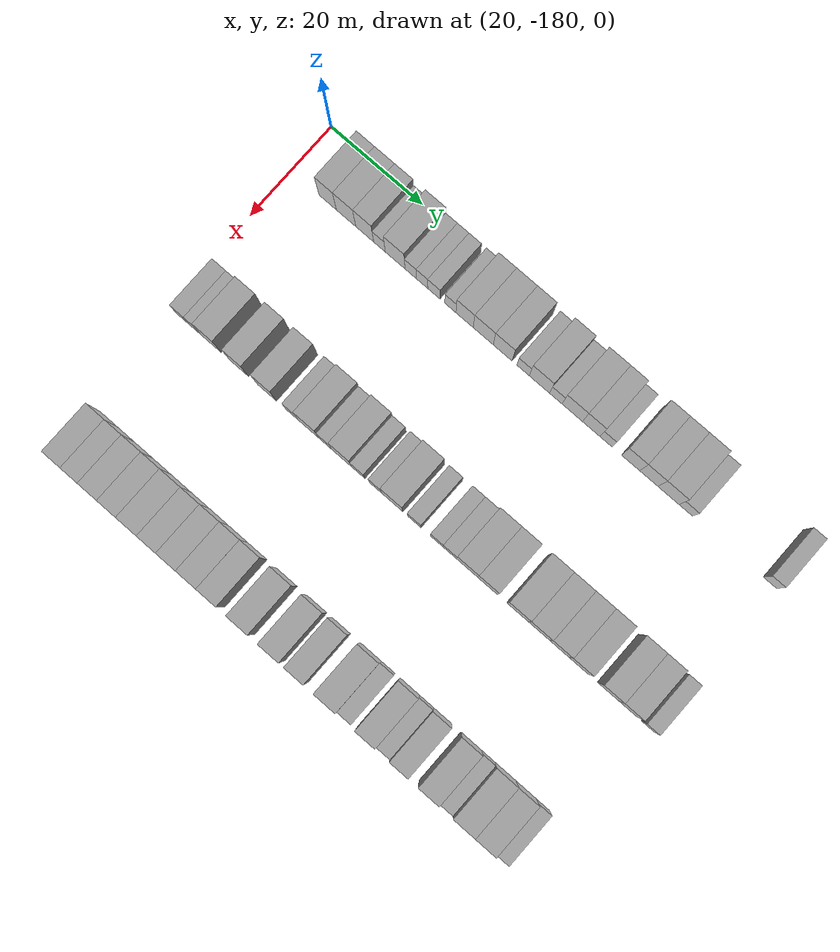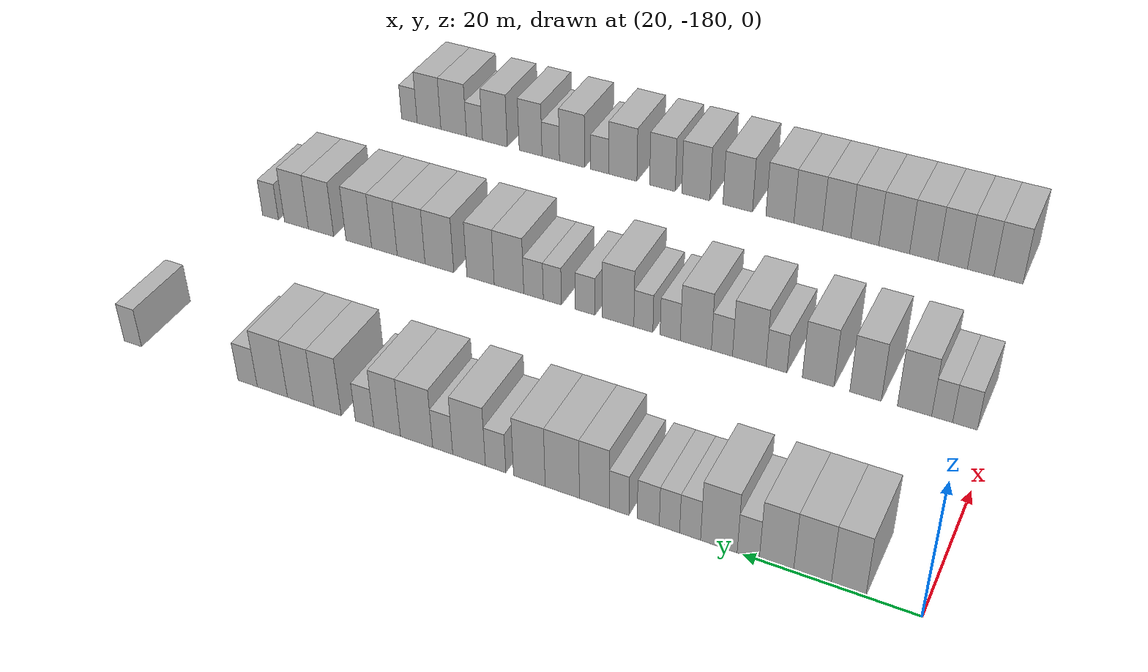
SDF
<sdf version="1.6">
 <world name="default">
  <model name="building_24">
   <static>1</static>
   <pose>25.0000 -171.9124 0 0.000000 0.000000 0.000000</pose>
   <link name="link">
    <pose>0 0 4.50 0 0 0</pose>
    <collision name="collision"><geometry><box><size>10.0000 3.8219 9.0000</size></box></geometry></collision>
    <visual name="visual">
     <cast_shadows>0</cast_shadows>
     <geometry><box><size>10.0000 3.8219 9.0000</size></box></geometry>
     <material>
      <script>
       <uri>model://HANNAS_wall/materials/scripts</uri>
       <uri>model://HANNAS_wall/materials/textures</uri>
       <name>vrc/HANNAS_wall</name>
      </script>
     </material>
    </visual>
   </link>
  </model>
  <model name="building_25">
   <static>1</static>
   <pose>25.0000 -167.8918 0 0.000000 0.000000 0.000000</pose>
   <link name="link">
    <pose>0 0 4.50 0 0 0</pose>
    <collision name="collision"><geometry><box><size>10.0000 4.2192 9.0000</size></box></geometry></collision>
    <visual name="visual">
     <cast_shadows>0</cast_shadows>
     <geometry><box><size>10.0000 4.2192 9.0000</size></box></geometry>
     <material>
      <script>
       <uri>model://HANNAS_wall/materials/scripts</uri>
       <uri>model://HANNAS_wall/materials/textures</uri>
       <name>vrc/HANNAS_wall</name>
      </script>
     </material>
    </visual>
   </link>
  </model>
  <model name="building_26">
   <static>1</static>
   <pose>25.0000 -163.8334 0 0.000000 0.000000 0.000000</pose>
   <link name="link">
    <pose>0 0 4.50 0 0 0</pose>
    <collision name="collision"><geometry><box><size>10.0000 3.8976 9.0000</size></box></geometry></collision>
    <visual name="visual">
     <cast_shadows>0</cast_shadows>
     <geometry><box><size>10.0000 3.8976 9.0000</size></box></geometry>
     <material>
      <script>
       <uri>model://HANNAS_wall/materials/scripts</uri>
       <uri>model://HANNAS_wall/materials/textures</uri>
       <name>vrc/HANNAS_wall</name>
      </script>
     </material>
    </visual>
   </link>
  </model>
  <model name="building_27">
   <static>1</static>
   <pose>25.0000 -160.6127 0 0.000000 0.000000 0.000000</pose>
   <link name="link">
    <pose>0 0 3.00 0 0 0</pose>
    <collision name="collision"><geometry><box><size>10.0000 2.5439 6.0000</size></box></geometry></collision>
    <visual name="visual">
     <cast_shadows>0</cast_shadows>
     <geometry><box><size>10.0000 2.5439 6.0000</size></box></geometry>
     <material>
      <script>
       <uri>model://HANNAS_wall/materials/scripts</uri>
       <uri>model://HANNAS_wall/materials/textures</uri>
       <name>vrc/HANNAS_wall</name>
      </script>
     </material>
    </visual>
   </link>
  </model>
  <model name="building_28">
   <static>1</static>
   <pose>25.0000 -157.1994 0 0.000000 0.000000 0.000000</pose>
   <link name="link">
    <pose>0 0 4.50 0 0 0</pose>
    <collision name="collision"><geometry><box><size>10.0000 4.2827 9.0000</size></box></geometry></collision>
    <visual name="visual">
     <cast_shadows>0</cast_shadows>
     <geometry><box><size>10.0000 4.2827 9.0000</size></box></geometry>
     <material>
      <script>
       <uri>model://HANNAS_wall/materials/scripts</uri>
       <uri>model://HANNAS_wall/materials/textures</uri>
       <name>vrc/HANNAS_wall</name>
      </script>
     </material>
    </visual>
   </link>
  </model>
  <model name="building_29">
   <static>1</static>
   <pose>25.0000 -153.8131 0 0.000000 0.000000 0.000000</pose>
   <link name="link">
    <pose>0 0 3.00 0 0 0</pose>
    <collision name="collision"><geometry><box><size>10.0000 2.4900 6.0000</size></box></geometry></collision>
    <visual name="visual">
     <cast_shadows>0</cast_shadows>
     <geometry><box><size>10.0000 2.4900 6.0000</size></box></geometry>
     <material>
      <script>
       <uri>model://HANNAS_wall/materials/scripts</uri>
       <uri>model://HANNAS_wall/materials/textures</uri>
       <name>vrc/HANNAS_wall</name>
      </script>
     </material>
    </visual>
   </link>
  </model>
  <model name="building_30">
   <static>1</static>
   <pose>25.0000 -151.3480 0 0.000000 0.000000 0.000000</pose>
   <link name="link">
    <pose>0 0 3.00 0 0 0</pose>
    <collision name="collision"><geometry><box><size>10.0000 2.4401 6.0000</size></box></geometry></collision>
    <visual name="visual">
     <cast_shadows>0</cast_shadows>
     <geometry><box><size>10.0000 2.4401 6.0000</size></box></geometry>
     <material>
      <script>
       <uri>model://HANNAS_wall/materials/scripts</uri>
       <uri>model://HANNAS_wall/materials/textures</uri>
       <name>vrc/HANNAS_wall</name>
      </script>
     </material>
    </visual>
   </link>
  </model>
  <model name="building_31">
   <static>1</static>
   <pose>25.0000 -148.7919 0 0.000000 0.000000 0.000000</pose>
   <link name="link">
    <pose>0 0 3.00 0 0 0</pose>
    <collision name="collision"><geometry><box><size>10.0000 2.6721 6.0000</size></box></geometry></collision>
    <visual name="visual">
     <cast_shadows>0</cast_shadows>
     <geometry><box><size>10.0000 2.6721 6.0000</size></box></geometry>
     <material>
      <script>
       <uri>model://HANNAS_wall/materials/scripts</uri>
       <uri>model://HANNAS_wall/materials/textures</uri>
       <name>vrc/HANNAS_wall</name>
      </script>
     </material>
    </visual>
   </link>
  </model>
  <model name="building_32">
   <static>1</static>
   <pose>25.0000 -145.2476 0 0.000000 0.000000 0.000000</pose>
   <link name="link">
    <pose>0 0 3.00 0 0 0</pose>
    <collision name="collision"><geometry><box><size>10.0000 2.4164 6.0000</size></box></geometry></collision>
    <visual name="visual">
     <cast_shadows>0</cast_shadows>
     <geometry><box><size>10.0000 2.4164 6.0000</size></box></geometry>
     <material>
      <script>
       <uri>model://HANNAS_wall/materials/scripts</uri>
       <uri>model://HANNAS_wall/materials/textures</uri>
       <name>vrc/HANNAS_wall</name>
      </script>
     </material>
    </visual>
   </link>
  </model>
  <model name="building_33">
   <static>1</static>
   <pose>25.0000 -142.1859 0 0.000000 0.000000 0.000000</pose>
   <link name="link">
    <pose>0 0 4.50 0 0 0</pose>
    <collision name="collision"><geometry><box><size>10.0000 3.7071 9.0000</size></box></geometry></collision>
    <visual name="visual">
     <cast_shadows>0</cast_shadows>
     <geometry><box><size>10.0000 3.7071 9.0000</size></box></geometry>
     <material>
      <script>
       <uri>model://HANNAS_wall/materials/scripts</uri>
       <uri>model://HANNAS_wall/materials/textures</uri>
       <name>vrc/HANNAS_wall</name>
      </script>
     </material>
    </visual>
   </link>
  </model>
  <model name="building_34">
   <static>1</static>
   <pose>25.0000 -138.1771 0 0.000000 0.000000 0.000000</pose>
   <link name="link">
    <pose>0 0 4.50 0 0 0</pose>
    <collision name="collision"><geometry><box><size>10.0000 4.3105 9.0000</size></box></geometry></collision>
    <visual name="visual">
     <cast_shadows>0</cast_shadows>
     <geometry><box><size>10.0000 4.3105 9.0000</size></box></geometry>
     <material>
      <script>
       <uri>model://HANNAS_wall/materials/scripts</uri>
       <uri>model://HANNAS_wall/materials/textures</uri>
       <name>vrc/HANNAS_wall</name>
      </script>
     </material>
    </visual>
   </link>
  </model>
  <model name="building_35">
   <static>1</static>
   <pose>25.0000 -133.9963 0 0.000000 0.000000 0.000000</pose>
   <link name="link">
    <pose>0 0 4.50 0 0 0</pose>
    <collision name="collision"><geometry><box><size>10.0000 4.0511 9.0000</size></box></geometry></collision>
    <visual name="visual">
     <cast_shadows>0</cast_shadows>
     <geometry><box><size>10.0000 4.0511 9.0000</size></box></geometry>
     <material>
      <script>
       <uri>model://HANNAS_wall/materials/scripts</uri>
       <uri>model://HANNAS_wall/materials/textures</uri>
       <name>vrc/HANNAS_wall</name>
      </script>
     </material>
    </visual>
   </link>
  </model>
  <model name="building_36">
   <static>1</static>
   <pose>25.0000 -129.6405 0 0.000000 0.000000 0.000000</pose>
   <link name="link">
    <pose>0 0 3.00 0 0 0</pose>
    <collision name="collision"><geometry><box><size>10.0000 2.6605 6.0000</size></box></geometry></collision>
    <visual name="visual">
     <cast_shadows>0</cast_shadows>
     <geometry><box><size>10.0000 2.6605 6.0000</size></box></geometry>
     <material>
      <script>
       <uri>model://HANNAS_wall/materials/scripts</uri>
       <uri>model://HANNAS_wall/materials/textures</uri>
       <name>vrc/HANNAS_wall</name>
      </script>
     </material>
    </visual>
   </link>
  </model>
  <model name="building_37">
   <static>1</static>
   <pose>25.0000 -126.1545 0 0.000000 0.000000 0.000000</pose>
   <link name="link">
    <pose>0 0 4.50 0 0 0</pose>
    <collision name="collision"><geometry><box><size>10.0000 4.3115 9.0000</size></box></geometry></collision>
    <visual name="visual">
     <cast_shadows>0</cast_shadows>
     <geometry><box><size>10.0000 4.3115 9.0000</size></box></geometry>
     <material>
      <script>
       <uri>model://HANNAS_wall/materials/scripts</uri>
       <uri>model://HANNAS_wall/materials/textures</uri>
       <name>vrc/HANNAS_wall</name>
      </script>
     </material>
    </visual>
   </link>
  </model>
  <model name="building_38">
   <static>1</static>
   <pose>25.0000 -122.6563 0 0.000000 0.000000 0.000000</pose>
   <link name="link">
    <pose>0 0 3.00 0 0 0</pose>
    <collision name="collision"><geometry><box><size>10.0000 2.6848 6.0000</size></box></geometry></collision>
    <visual name="visual">
     <cast_shadows>0</cast_shadows>
     <geometry><box><size>10.0000 2.6848 6.0000</size></box></geometry>
     <material>
      <script>
       <uri>model://HANNAS_wall/materials/scripts</uri>
       <uri>model://HANNAS_wall/materials/textures</uri>
       <name>vrc/HANNAS_wall</name>
      </script>
     </material>
    </visual>
   </link>
  </model>
  <model name="building_39">
   <static>1</static>
   <pose>25.0000 -119.1325 0 0.000000 0.000000 0.000000</pose>
   <link name="link">
    <pose>0 0 4.50 0 0 0</pose>
    <collision name="collision"><geometry><box><size>10.0000 4.3629 9.0000</size></box></geometry></collision>
    <visual name="visual">
     <cast_shadows>0</cast_shadows>
     <geometry><box><size>10.0000 4.3629 9.0000</size></box></geometry>
     <material>
      <script>
       <uri>model://HANNAS_wall/materials/scripts</uri>
       <uri>model://HANNAS_wall/materials/textures</uri>
       <name>vrc/HANNAS_wall</name>
      </script>
     </material>
    </visual>
   </link>
  </model>
  <model name="building_40">
   <static>1</static>
   <pose>25.0000 -115.1239 0 0.000000 0.000000 0.000000</pose>
   <link name="link">
    <pose>0 0 4.50 0 0 0</pose>
    <collision name="collision"><geometry><box><size>10.0000 3.6542 9.0000</size></box></geometry></collision>
    <visual name="visual">
     <cast_shadows>0</cast_shadows>
     <geometry><box><size>10.0000 3.6542 9.0000</size></box></geometry>
     <material>
      <script>
       <uri>model://HANNAS_wall/materials/scripts</uri>
       <uri>model://HANNAS_wall/materials/textures</uri>
       <name>vrc/HANNAS_wall</name>
      </script>
     </material>
    </visual>
   </link>
  </model>
  <model name="building_41">
   <static>1</static>
   <pose>25.0000 -112.0089 0 0.000000 0.000000 0.000000</pose>
   <link name="link">
    <pose>0 0 3.00 0 0 0</pose>
    <collision name="collision"><geometry><box><size>10.0000 2.5757 6.0000</size></box></geometry></collision>
    <visual name="visual">
     <cast_shadows>0</cast_shadows>
     <geometry><box><size>10.0000 2.5757 6.0000</size></box></geometry>
     <material>
      <script>
       <uri>model://HANNAS_wall/materials/scripts</uri>
       <uri>model://HANNAS_wall/materials/textures</uri>
       <name>vrc/HANNAS_wall</name>
      </script>
     </material>
    </visual>
   </link>
  </model>
  <model name="building_42">
   <static>1</static>
   <pose>25.0000 -106.8055 0 0.000000 0.000000 0.000000</pose>
   <link name="link">
    <pose>0 0 4.50 0 0 0</pose>
    <collision name="collision"><geometry><box><size>10.0000 3.8310 9.0000</size></box></geometry></collision>
    <visual name="visual">
     <cast_shadows>0</cast_shadows>
     <geometry><box><size>10.0000 3.8310 9.0000</size></box></geometry>
     <material>
      <script>
       <uri>model://HANNAS_wall/materials/scripts</uri>
       <uri>model://HANNAS_wall/materials/textures</uri>
       <name>vrc/HANNAS_wall</name>
      </script>
     </material>
    </visual>
   </link>
  </model>
  <model name="building_43">
   <static>1</static>
   <pose>25.0000 -102.9710 0 0.000000 0.000000 0.000000</pose>
   <link name="link">
    <pose>0 0 4.50 0 0 0</pose>
    <collision name="collision"><geometry><box><size>10.0000 3.8380 9.0000</size></box></geometry></collision>
    <visual name="visual">
     <cast_shadows>0</cast_shadows>
     <geometry><box><size>10.0000 3.8380 9.0000</size></box></geometry>
     <material>
      <script>
       <uri>model://HANNAS_wall/materials/scripts</uri>
       <uri>model://HANNAS_wall/materials/textures</uri>
       <name>vrc/HANNAS_wall</name>
      </script>
     </material>
    </visual>
   </link>
  </model>
  <model name="building_44">
   <static>1</static>
   <pose>25.0000 -98.8531 0 0.000000 0.000000 0.000000</pose>
   <link name="link">
    <pose>0 0 4.50 0 0 0</pose>
    <collision name="collision"><geometry><box><size>10.0000 4.3977 9.0000</size></box></geometry></collision>
    <visual name="visual">
     <cast_shadows>0</cast_shadows>
     <geometry><box><size>10.0000 4.3977 9.0000</size></box></geometry>
     <material>
      <script>
       <uri>model://HANNAS_wall/materials/scripts</uri>
       <uri>model://HANNAS_wall/materials/textures</uri>
       <name>vrc/HANNAS_wall</name>
      </script>
     </material>
    </visual>
   </link>
  </model>
  <model name="building_45">
   <static>1</static>
   <pose>25.0000 -95.2308 0 0.000000 0.000000 0.000000</pose>
   <link name="link">
    <pose>0 0 3.00 0 0 0</pose>
    <collision name="collision"><geometry><box><size>10.0000 2.8469 6.0000</size></box></geometry></collision>
    <visual name="visual">
     <cast_shadows>0</cast_shadows>
     <geometry><box><size>10.0000 2.8469 6.0000</size></box></geometry>
     <material>
      <script>
       <uri>model://HANNAS_wall/materials/scripts</uri>
       <uri>model://HANNAS_wall/materials/textures</uri>
       <name>vrc/HANNAS_wall</name>
      </script>
     </material>
    </visual>
   </link>
  </model>
  <model name="building_46">
   <static>1</static>
   <pose>25.0000 -77.7292 0 0.000000 0.000000 0.000000</pose>
   <link name="link">
    <pose>0 0 3.00 0 0 0</pose>
    <collision name="collision"><geometry><box><size>10.0000 2.7188 6.0000</size></box></geometry></collision>
    <visual name="visual">
     <cast_shadows>0</cast_shadows>
     <geometry><box><size>10.0000 2.7188 6.0000</size></box></geometry>
     <material>
      <script>
       <uri>model://HANNAS_wall/materials/scripts</uri>
       <uri>model://HANNAS_wall/materials/textures</uri>
       <name>vrc/HANNAS_wall</name>
      </script>
     </material>
    </visual>
   </link>
  </model>
  <model name="building_161">
   <static>1</static>
   <pose>55.0000 -176.5778 0 0.000000 0.000000 0.000000</pose>
   <link name="link">
    <pose>0 0 3.00 0 0 0</pose>
    <collision name="collision"><geometry><box><size>10.0000 2.9802 6.0000</size></box></geometry></collision>
    <visual name="visual">
     <cast_shadows>0</cast_shadows>
     <geometry><box><size>10.0000 2.9802 6.0000</size></box></geometry>
     <material>
      <script>
       <uri>model://HANNAS_wall/materials/scripts</uri>
       <uri>model://HANNAS_wall/materials/textures</uri>
       <name>vrc/HANNAS_wall</name>
      </script>
     </material>
    </visual>
   </link>
  </model>
  <model name="building_162">
   <static>1</static>
   <pose>55.0000 -173.8119 0 0.000000 0.000000 0.000000</pose>
   <link name="link">
    <pose>0 0 3.00 0 0 0</pose>
    <collision name="collision"><geometry><box><size>10.0000 2.5515 6.0000</size></box></geometry></collision>
    <visual name="visual">
     <cast_shadows>0</cast_shadows>
     <geometry><box><size>10.0000 2.5515 6.0000</size></box></geometry>
     <material>
      <script>
       <uri>model://HANNAS_wall/materials/scripts</uri>
       <uri>model://HANNAS_wall/materials/textures</uri>
       <name>vrc/HANNAS_wall</name>
      </script>
     </material>
    </visual>
   </link>
  </model>
  <model name="building_163">
   <static>1</static>
   <pose>55.0000 -170.4218 0 0.000000 0.000000 0.000000</pose>
   <link name="link">
    <pose>0 0 4.50 0 0 0</pose>
    <collision name="collision"><geometry><box><size>10.0000 4.2287 9.0000</size></box></geometry></collision>
    <visual name="visual">
     <cast_shadows>0</cast_shadows>
     <geometry><box><size>10.0000 4.2287 9.0000</size></box></geometry>
     <material>
      <script>
       <uri>model://HANNAS_wall/materials/scripts</uri>
       <uri>model://HANNAS_wall/materials/textures</uri>
       <name>vrc/HANNAS_wall</name>
      </script>
     </material>
    </visual>
   </link>
  </model>
  <model name="building_164">
   <static>1</static>
   <pose>55.0000 -164.3189 0 0.000000 0.000000 0.000000</pose>
   <link name="link">
    <pose>0 0 4.50 0 0 0</pose>
    <collision name="collision"><geometry><box><size>10.0000 3.9770 9.0000</size></box></geometry></collision>
    <visual name="visual">
     <cast_shadows>0</cast_shadows>
     <geometry><box><size>10.0000 3.9770 9.0000</size></box></geometry>
     <material>
      <script>
       <uri>model://HANNAS_wall/materials/scripts</uri>
       <uri>model://HANNAS_wall/materials/textures</uri>
       <name>vrc/HANNAS_wall</name>
      </script>
     </material>
    </visual>
   </link>
  </model>
  <model name="building_165">
   <static>1</static>
   <pose>55.0000 -158.2863 0 0.000000 0.000000 0.000000</pose>
   <link name="link">
    <pose>0 0 4.50 0 0 0</pose>
    <collision name="collision"><geometry><box><size>10.0000 4.0882 9.0000</size></box></geometry></collision>
    <visual name="visual">
     <cast_shadows>0</cast_shadows>
     <geometry><box><size>10.0000 4.0882 9.0000</size></box></geometry>
     <material>
      <script>
       <uri>model://HANNAS_wall/materials/scripts</uri>
       <uri>model://HANNAS_wall/materials/textures</uri>
       <name>vrc/HANNAS_wall</name>
      </script>
     </material>
    </visual>
   </link>
  </model>
  <model name="building_166">
   <static>1</static>
   <pose>55.0000 -152.8646 0 0.000000 0.000000 0.000000</pose>
   <link name="link">
    <pose>0 0 3.00 0 0 0</pose>
    <collision name="collision"><geometry><box><size>10.0000 2.7552 6.0000</size></box></geometry></collision>
    <visual name="visual">
     <cast_shadows>0</cast_shadows>
     <geometry><box><size>10.0000 2.7552 6.0000</size></box></geometry>
     <material>
      <script>
       <uri>model://HANNAS_wall/materials/scripts</uri>
       <uri>model://HANNAS_wall/materials/textures</uri>
       <name>vrc/HANNAS_wall</name>
      </script>
     </material>
    </visual>
   </link>
  </model>
  <model name="building_167">
   <static>1</static>
   <pose>55.0000 -149.2653 0 0.000000 0.000000 0.000000</pose>
   <link name="link">
    <pose>0 0 4.50 0 0 0</pose>
    <collision name="collision"><geometry><box><size>10.0000 4.4434 9.0000</size></box></geometry></collision>
    <visual name="visual">
     <cast_shadows>0</cast_shadows>
     <geometry><box><size>10.0000 4.4434 9.0000</size></box></geometry>
     <material>
      <script>
       <uri>model://HANNAS_wall/materials/scripts</uri>
       <uri>model://HANNAS_wall/materials/textures</uri>
       <name>vrc/HANNAS_wall</name>
      </script>
     </material>
    </visual>
   </link>
  </model>
  <model name="building_168">
   <static>1</static>
   <pose>55.0000 -145.6277 0 0.000000 0.000000 0.000000</pose>
   <link name="link">
    <pose>0 0 3.00 0 0 0</pose>
    <collision name="collision"><geometry><box><size>10.0000 2.8317 6.0000</size></box></geometry></collision>
    <visual name="visual">
     <cast_shadows>0</cast_shadows>
     <geometry><box><size>10.0000 2.8317 6.0000</size></box></geometry>
     <material>
      <script>
       <uri>model://HANNAS_wall/materials/scripts</uri>
       <uri>model://HANNAS_wall/materials/textures</uri>
       <name>vrc/HANNAS_wall</name>
      </script>
     </material>
    </visual>
   </link>
  </model>
  <model name="building_169">
   <static>1</static>
   <pose>55.0000 -142.0864 0 0.000000 0.000000 0.000000</pose>
   <link name="link">
    <pose>0 0 4.50 0 0 0</pose>
    <collision name="collision"><geometry><box><size>10.0000 4.2509 9.0000</size></box></geometry></collision>
    <visual name="visual">
     <cast_shadows>0</cast_shadows>
     <geometry><box><size>10.0000 4.2509 9.0000</size></box></geometry>
     <material>
      <script>
       <uri>model://HANNAS_wall/materials/scripts</uri>
       <uri>model://HANNAS_wall/materials/textures</uri>
       <name>vrc/HANNAS_wall</name>
      </script>
     </material>
    </visual>
   </link>
  </model>
  <model name="building_170">
   <static>1</static>
   <pose>55.0000 -138.5723 0 0.000000 0.000000 0.000000</pose>
   <link name="link">
    <pose>0 0 3.00 0 0 0</pose>
    <collision name="collision"><geometry><box><size>10.0000 2.7774 6.0000</size></box></geometry></collision>
    <visual name="visual">
     <cast_shadows>0</cast_shadows>
     <geometry><box><size>10.0000 2.7774 6.0000</size></box></geometry>
     <material>
      <script>
       <uri>model://HANNAS_wall/materials/scripts</uri>
       <uri>model://HANNAS_wall/materials/textures</uri>
       <name>vrc/HANNAS_wall</name>
      </script>
     </material>
    </visual>
   </link>
  </model>
  <model name="building_171">
   <static>1</static>
   <pose>55.0000 -134.8579 0 0.000000 0.000000 0.000000</pose>
   <link name="link">
    <pose>0 0 3.00 0 0 0</pose>
    <collision name="collision"><geometry><box><size>10.0000 2.6514 6.0000</size></box></geometry></collision>
    <visual name="visual">
     <cast_shadows>0</cast_shadows>
     <geometry><box><size>10.0000 2.6514 6.0000</size></box></geometry>
     <material>
      <script>
       <uri>model://HANNAS_wall/materials/scripts</uri>
       <uri>model://HANNAS_wall/materials/textures</uri>
       <name>vrc/HANNAS_wall</name>
      </script>
     </material>
    </visual>
   </link>
  </model>
  <model name="building_172">
   <static>1</static>
   <pose>55.0000 -131.2928 0 0.000000 0.000000 0.000000</pose>
   <link name="link">
    <pose>0 0 4.50 0 0 0</pose>
    <collision name="collision"><geometry><box><size>10.0000 4.4788 9.0000</size></box></geometry></collision>
    <visual name="visual">
     <cast_shadows>0</cast_shadows>
     <geometry><box><size>10.0000 4.4788 9.0000</size></box></geometry>
     <material>
      <script>
       <uri>model://HANNAS_wall/materials/scripts</uri>
       <uri>model://HANNAS_wall/materials/textures</uri>
       <name>vrc/HANNAS_wall</name>
      </script>
     </material>
    </visual>
   </link>
  </model>
  <model name="building_173">
   <static>1</static>
   <pose>55.0000 -126.6267 0 0.000000 0.000000 0.000000</pose>
   <link name="link">
    <pose>0 0 3.00 0 0 0</pose>
    <collision name="collision"><geometry><box><size>10.0000 2.8535 6.0000</size></box></geometry></collision>
    <visual name="visual">
     <cast_shadows>0</cast_shadows>
     <geometry><box><size>10.0000 2.8535 6.0000</size></box></geometry>
     <material>
      <script>
       <uri>model://HANNAS_wall/materials/scripts</uri>
       <uri>model://HANNAS_wall/materials/textures</uri>
       <name>vrc/HANNAS_wall</name>
      </script>
     </material>
    </visual>
   </link>
  </model>
  <model name="building_174">
   <static>1</static>
   <pose>55.0000 -121.8804 0 0.000000 0.000000 0.000000</pose>
   <link name="link">
    <pose>0 0 3.00 0 0 0</pose>
    <collision name="collision"><geometry><box><size>10.0000 2.6390 6.0000</size></box></geometry></collision>
    <visual name="visual">
     <cast_shadows>0</cast_shadows>
     <geometry><box><size>10.0000 2.6390 6.0000</size></box></geometry>
     <material>
      <script>
       <uri>model://HANNAS_wall/materials/scripts</uri>
       <uri>model://HANNAS_wall/materials/textures</uri>
       <name>vrc/HANNAS_wall</name>
      </script>
     </material>
    </visual>
   </link>
  </model>
  <model name="building_175">
   <static>1</static>
   <pose>55.0000 -119.1219 0 0.000000 0.000000 0.000000</pose>
   <link name="link">
    <pose>0 0 3.00 0 0 0</pose>
    <collision name="collision"><geometry><box><size>10.0000 2.8780 6.0000</size></box></geometry></collision>
    <visual name="visual">
     <cast_shadows>0</cast_shadows>
     <geometry><box><size>10.0000 2.8780 6.0000</size></box></geometry>
     <material>
      <script>
       <uri>model://HANNAS_wall/materials/scripts</uri>
       <uri>model://HANNAS_wall/materials/textures</uri>
       <name>vrc/HANNAS_wall</name>
      </script>
     </material>
    </visual>
   </link>
  </model>
  <model name="building_176">
   <static>1</static>
   <pose>55.0000 -115.4802 0 0.000000 0.000000 0.000000</pose>
   <link name="link">
    <pose>0 0 4.50 0 0 0</pose>
    <collision name="collision"><geometry><box><size>10.0000 4.4054 9.0000</size></box></geometry></collision>
    <visual name="visual">
     <cast_shadows>0</cast_shadows>
     <geometry><box><size>10.0000 4.4054 9.0000</size></box></geometry>
     <material>
      <script>
       <uri>model://HANNAS_wall/materials/scripts</uri>
       <uri>model://HANNAS_wall/materials/textures</uri>
       <name>vrc/HANNAS_wall</name>
      </script>
     </material>
    </visual>
   </link>
  </model>
  <model name="building_177">
   <static>1</static>
   <pose>55.0000 -111.2145 0 0.000000 0.000000 0.000000</pose>
   <link name="link">
    <pose>0 0 4.50 0 0 0</pose>
    <collision name="collision"><geometry><box><size>10.0000 4.1259 9.0000</size></box></geometry></collision>
    <visual name="visual">
     <cast_shadows>0</cast_shadows>
     <geometry><box><size>10.0000 4.1259 9.0000</size></box></geometry>
     <material>
      <script>
       <uri>model://HANNAS_wall/materials/scripts</uri>
       <uri>model://HANNAS_wall/materials/textures</uri>
       <name>vrc/HANNAS_wall</name>
      </script>
     </material>
    </visual>
   </link>
  </model>
  <model name="building_178">
   <static>1</static>
   <pose>55.0000 -104.9356 0 0.000000 0.000000 0.000000</pose>
   <link name="link">
    <pose>0 0 4.50 0 0 0</pose>
    <collision name="collision"><geometry><box><size>10.0000 4.4320 9.0000</size></box></geometry></collision>
    <visual name="visual">
     <cast_shadows>0</cast_shadows>
     <geometry><box><size>10.0000 4.4320 9.0000</size></box></geometry>
     <material>
      <script>
       <uri>model://HANNAS_wall/materials/scripts</uri>
       <uri>model://HANNAS_wall/materials/textures</uri>
       <name>vrc/HANNAS_wall</name>
      </script>
     </material>
    </visual>
   </link>
  </model>
  <model name="building_179">
   <static>1</static>
   <pose>55.0000 -100.5395 0 0.000000 0.000000 0.000000</pose>
   <link name="link">
    <pose>0 0 4.50 0 0 0</pose>
    <collision name="collision"><geometry><box><size>10.0000 4.3601 9.0000</size></box></geometry></collision>
    <visual name="visual">
     <cast_shadows>0</cast_shadows>
     <geometry><box><size>10.0000 4.3601 9.0000</size></box></geometry>
     <material>
      <script>
       <uri>model://HANNAS_wall/materials/scripts</uri>
       <uri>model://HANNAS_wall/materials/textures</uri>
       <name>vrc/HANNAS_wall</name>
      </script>
     </material>
    </visual>
   </link>
  </model>
  <model name="building_180">
   <static>1</static>
   <pose>55.0000 -96.3416 0 0.000000 0.000000 0.000000</pose>
   <link name="link">
    <pose>0 0 4.50 0 0 0</pose>
    <collision name="collision"><geometry><box><size>10.0000 4.0357 9.0000</size></box></geometry></collision>
    <visual name="visual">
     <cast_shadows>0</cast_shadows>
     <geometry><box><size>10.0000 4.0357 9.0000</size></box></geometry>
     <material>
      <script>
       <uri>model://HANNAS_wall/materials/scripts</uri>
       <uri>model://HANNAS_wall/materials/textures</uri>
       <name>vrc/HANNAS_wall</name>
      </script>
     </material>
    </visual>
   </link>
  </model>
  <model name="building_181">
   <static>1</static>
   <pose>55.0000 -92.2596 0 0.000000 0.000000 0.000000</pose>
   <link name="link">
    <pose>0 0 4.50 0 0 0</pose>
    <collision name="collision"><geometry><box><size>10.0000 4.1283 9.0000</size></box></geometry></collision>
    <visual name="visual">
     <cast_shadows>0</cast_shadows>
     <geometry><box><size>10.0000 4.1283 9.0000</size></box></geometry>
     <material>
      <script>
       <uri>model://HANNAS_wall/materials/scripts</uri>
       <uri>model://HANNAS_wall/materials/textures</uri>
       <name>vrc/HANNAS_wall</name>
      </script>
     </material>
    </visual>
   </link>
  </model>
  <model name="building_182">
   <static>1</static>
   <pose>55.0000 -86.1269 0 0.000000 0.000000 0.000000</pose>
   <link name="link">
    <pose>0 0 4.50 0 0 0</pose>
    <collision name="collision"><geometry><box><size>10.0000 4.1369 9.0000</size></box></geometry></collision>
    <visual name="visual">
     <cast_shadows>0</cast_shadows>
     <geometry><box><size>10.0000 4.1369 9.0000</size></box></geometry>
     <material>
      <script>
       <uri>model://HANNAS_wall/materials/scripts</uri>
       <uri>model://HANNAS_wall/materials/textures</uri>
       <name>vrc/HANNAS_wall</name>
      </script>
     </material>
    </visual>
   </link>
  </model>
  <model name="building_183">
   <static>1</static>
   <pose>55.0000 -82.0751 0 0.000000 0.000000 0.000000</pose>
   <link name="link">
    <pose>0 0 4.50 0 0 0</pose>
    <collision name="collision"><geometry><box><size>10.0000 3.9669 9.0000</size></box></geometry></collision>
    <visual name="visual">
     <cast_shadows>0</cast_shadows>
     <geometry><box><size>10.0000 3.9669 9.0000</size></box></geometry>
     <material>
      <script>
       <uri>model://HANNAS_wall/materials/scripts</uri>
       <uri>model://HANNAS_wall/materials/textures</uri>
       <name>vrc/HANNAS_wall</name>
      </script>
     </material>
    </visual>
   </link>
  </model>
  <model name="building_184">
   <static>1</static>
   <pose>55.0000 -77.7610 0 0.000000 0.000000 0.000000</pose>
   <link name="link">
    <pose>0 0 3.00 0 0 0</pose>
    <collision name="collision"><geometry><box><size>10.0000 2.6612 6.0000</size></box></geometry></collision>
    <visual name="visual">
     <cast_shadows>0</cast_shadows>
     <geometry><box><size>10.0000 2.6612 6.0000</size></box></geometry>
     <material>
      <script>
       <uri>model://HANNAS_wall/materials/scripts</uri>
       <uri>model://HANNAS_wall/materials/textures</uri>
       <name>vrc/HANNAS_wall</name>
      </script>
     </material>
    </visual>
   </link>
  </model>
  <model name="building_305">
   <static>1</static>
   <pose>85.0000 -174.5569 0 0.000000 0.000000 0.000000</pose>
   <link name="link">
    <pose>0 0 4.50 0 0 0</pose>
    <collision name="collision"><geometry><box><size>10.0000 3.8889 9.0000</size></box></geometry></collision>
    <visual name="visual">
     <cast_shadows>0</cast_shadows>
     <geometry><box><size>10.0000 3.8889 9.0000</size></box></geometry>
     <material>
      <script>
       <uri>model://HANNAS_wall/materials/scripts</uri>
       <uri>model://HANNAS_wall/materials/textures</uri>
       <name>vrc/HANNAS_wall</name>
      </script>
     </material>
    </visual>
   </link>
  </model>
  <model name="building_306">
   <static>1</static>
   <pose>85.0000 -170.8119 0 0.000000 0.000000 0.000000</pose>
   <link name="link">
    <pose>0 0 4.50 0 0 0</pose>
    <collision name="collision"><geometry><box><size>10.0000 3.6010 9.0000</size></box></geometry></collision>
    <visual name="visual">
     <cast_shadows>0</cast_shadows>
     <geometry><box><size>10.0000 3.6010 9.0000</size></box></geometry>
     <material>
      <script>
       <uri>model://HANNAS_wall/materials/scripts</uri>
       <uri>model://HANNAS_wall/materials/textures</uri>
       <name>vrc/HANNAS_wall</name>
      </script>
     </material>
    </visual>
   </link>
  </model>
  <model name="building_307">
   <static>1</static>
   <pose>85.0000 -166.9927 0 0.000000 0.000000 0.000000</pose>
   <link name="link">
    <pose>0 0 4.50 0 0 0</pose>
    <collision name="collision"><geometry><box><size>10.0000 4.0375 9.0000</size></box></geometry></collision>
    <visual name="visual">
     <cast_shadows>0</cast_shadows>
     <geometry><box><size>10.0000 4.0375 9.0000</size></box></geometry>
     <material>
      <script>
       <uri>model://HANNAS_wall/materials/scripts</uri>
       <uri>model://HANNAS_wall/materials/textures</uri>
       <name>vrc/HANNAS_wall</name>
      </script>
     </material>
    </visual>
   </link>
  </model>
  <model name="building_308">
   <static>1</static>
   <pose>85.0000 -163.0033 0 0.000000 0.000000 0.000000</pose>
   <link name="link">
    <pose>0 0 4.50 0 0 0</pose>
    <collision name="collision"><geometry><box><size>10.0000 3.9412 9.0000</size></box></geometry></collision>
    <visual name="visual">
     <cast_shadows>0</cast_shadows>
     <geometry><box><size>10.0000 3.9412 9.0000</size></box></geometry>
     <material>
      <script>
       <uri>model://HANNAS_wall/materials/scripts</uri>
       <uri>model://HANNAS_wall/materials/textures</uri>
       <name>vrc/HANNAS_wall</name>
      </script>
     </material>
    </visual>
   </link>
  </model>
  <model name="building_309">
   <static>1</static>
   <pose>85.0000 -158.8747 0 0.000000 0.000000 0.000000</pose>
   <link name="link">
    <pose>0 0 4.50 0 0 0</pose>
    <collision name="collision"><geometry><box><size>10.0000 4.3160 9.0000</size></box></geometry></collision>
    <visual name="visual">
     <cast_shadows>0</cast_shadows>
     <geometry><box><size>10.0000 4.3160 9.0000</size></box></geometry>
     <material>
      <script>
       <uri>model://HANNAS_wall/materials/scripts</uri>
       <uri>model://HANNAS_wall/materials/textures</uri>
       <name>vrc/HANNAS_wall</name>
      </script>
     </material>
    </visual>
   </link>
  </model>
  <model name="building_310">
   <static>1</static>
   <pose>85.0000 -154.7222 0 0.000000 0.000000 0.000000</pose>
   <link name="link">
    <pose>0 0 4.50 0 0 0</pose>
    <collision name="collision"><geometry><box><size>10.0000 3.9891 9.0000</size></box></geometry></collision>
    <visual name="visual">
     <cast_shadows>0</cast_shadows>
     <geometry><box><size>10.0000 3.9891 9.0000</size></box></geometry>
     <material>
      <script>
       <uri>model://HANNAS_wall/materials/scripts</uri>
       <uri>model://HANNAS_wall/materials/textures</uri>
       <name>vrc/HANNAS_wall</name>
      </script>
     </material>
    </visual>
   </link>
  </model>
  <model name="building_311">
   <static>1</static>
   <pose>85.0000 -150.6829 0 0.000000 0.000000 0.000000</pose>
   <link name="link">
    <pose>0 0 4.50 0 0 0</pose>
    <collision name="collision"><geometry><box><size>10.0000 4.0895 9.0000</size></box></geometry></collision>
    <visual name="visual">
     <cast_shadows>0</cast_shadows>
     <geometry><box><size>10.0000 4.0895 9.0000</size></box></geometry>
     <material>
      <script>
       <uri>model://HANNAS_wall/materials/scripts</uri>
       <uri>model://HANNAS_wall/materials/textures</uri>
       <name>vrc/HANNAS_wall</name>
      </script>
     </material>
    </visual>
   </link>
  </model>
  <model name="building_312">
   <static>1</static>
   <pose>85.0000 -146.5433 0 0.000000 0.000000 0.000000</pose>
   <link name="link">
    <pose>0 0 4.50 0 0 0</pose>
    <collision name="collision"><geometry><box><size>10.0000 4.1896 9.0000</size></box></geometry></collision>
    <visual name="visual">
     <cast_shadows>0</cast_shadows>
     <geometry><box><size>10.0000 4.1896 9.0000</size></box></geometry>
     <material>
      <script>
       <uri>model://HANNAS_wall/materials/scripts</uri>
       <uri>model://HANNAS_wall/materials/textures</uri>
       <name>vrc/HANNAS_wall</name>
      </script>
     </material>
    </visual>
   </link>
  </model>
  <model name="building_313">
   <static>1</static>
   <pose>85.0000 -142.3769 0 0.000000 0.000000 0.000000</pose>
   <link name="link">
    <pose>0 0 4.50 0 0 0</pose>
    <collision name="collision"><geometry><box><size>10.0000 4.1431 9.0000</size></box></geometry></collision>
    <visual name="visual">
     <cast_shadows>0</cast_shadows>
     <geometry><box><size>10.0000 4.1431 9.0000</size></box></geometry>
     <material>
      <script>
       <uri>model://HANNAS_wall/materials/scripts</uri>
       <uri>model://HANNAS_wall/materials/textures</uri>
       <name>vrc/HANNAS_wall</name>
      </script>
     </material>
    </visual>
   </link>
  </model>
  <model name="building_314">
   <static>1</static>
   <pose>85.0000 -136.0764 0 0.000000 0.000000 0.000000</pose>
   <link name="link">
    <pose>0 0 4.50 0 0 0</pose>
    <collision name="collision"><geometry><box><size>10.0000 4.4579 9.0000</size></box></geometry></collision>
    <visual name="visual">
     <cast_shadows>0</cast_shadows>
     <geometry><box><size>10.0000 4.4579 9.0000</size></box></geometry>
     <material>
      <script>
       <uri>model://HANNAS_wall/materials/scripts</uri>
       <uri>model://HANNAS_wall/materials/textures</uri>
       <name>vrc/HANNAS_wall</name>
      </script>
     </material>
    </visual>
   </link>
  </model>
  <model name="building_315">
   <static>1</static>
   <pose>85.0000 -129.6746 0 0.000000 0.000000 0.000000</pose>
   <link name="link">
    <pose>0 0 4.50 0 0 0</pose>
    <collision name="collision"><geometry><box><size>10.0000 4.3458 9.0000</size></box></geometry></collision>
    <visual name="visual">
     <cast_shadows>0</cast_shadows>
     <geometry><box><size>10.0000 4.3458 9.0000</size></box></geometry>
     <material>
      <script>
       <uri>model://HANNAS_wall/materials/scripts</uri>
       <uri>model://HANNAS_wall/materials/textures</uri>
       <name>vrc/HANNAS_wall</name>
      </script>
     </material>
    </visual>
   </link>
  </model>
  <model name="building_316">
   <static>1</static>
   <pose>85.0000 -124.4931 0 0.000000 0.000000 0.000000</pose>
   <link name="link">
    <pose>0 0 4.50 0 0 0</pose>
    <collision name="collision"><geometry><box><size>10.0000 4.0171 9.0000</size></box></geometry></collision>
    <visual name="visual">
     <cast_shadows>0</cast_shadows>
     <geometry><box><size>10.0000 4.0171 9.0000</size></box></geometry>
     <material>
      <script>
       <uri>model://HANNAS_wall/materials/scripts</uri>
       <uri>model://HANNAS_wall/materials/textures</uri>
       <name>vrc/HANNAS_wall</name>
      </script>
     </material>
    </visual>
   </link>
  </model>
  <model name="building_317">
   <static>1</static>
   <pose>85.0000 -118.2413 0 0.000000 0.000000 0.000000</pose>
   <link name="link">
    <pose>0 0 4.50 0 0 0</pose>
    <collision name="collision"><geometry><box><size>10.0000 4.4867 9.0000</size></box></geometry></collision>
    <visual name="visual">
     <cast_shadows>0</cast_shadows>
     <geometry><box><size>10.0000 4.4867 9.0000</size></box></geometry>
     <material>
      <script>
       <uri>model://HANNAS_wall/materials/scripts</uri>
       <uri>model://HANNAS_wall/materials/textures</uri>
       <name>vrc/HANNAS_wall</name>
      </script>
     </material>
    </visual>
   </link>
  </model>
  <model name="building_318">
   <static>1</static>
   <pose>85.0000 -114.5497 0 0.000000 0.000000 0.000000</pose>
   <link name="link">
    <pose>0 0 3.00 0 0 0</pose>
    <collision name="collision"><geometry><box><size>10.0000 2.8965 6.0000</size></box></geometry></collision>
    <visual name="visual">
     <cast_shadows>0</cast_shadows>
     <geometry><box><size>10.0000 2.8965 6.0000</size></box></geometry>
     <material>
      <script>
       <uri>model://HANNAS_wall/materials/scripts</uri>
       <uri>model://HANNAS_wall/materials/textures</uri>
       <name>vrc/HANNAS_wall</name>
      </script>
     </material>
    </visual>
   </link>
  </model>
  <model name="building_319">
   <static>1</static>
   <pose>85.0000 -110.0453 0 0.000000 0.000000 0.000000</pose>
   <link name="link">
    <pose>0 0 4.50 0 0 0</pose>
    <collision name="collision"><geometry><box><size>10.0000 4.1124 9.0000</size></box></geometry></collision>
    <visual name="visual">
     <cast_shadows>0</cast_shadows>
     <geometry><box><size>10.0000 4.1124 9.0000</size></box></geometry>
     <material>
      <script>
       <uri>model://HANNAS_wall/materials/scripts</uri>
       <uri>model://HANNAS_wall/materials/textures</uri>
       <name>vrc/HANNAS_wall</name>
      </script>
     </material>
    </visual>
   </link>
  </model>
  <model name="building_320">
   <static>1</static>
   <pose>85.0000 -106.5532 0 0.000000 0.000000 0.000000</pose>
   <link name="link">
    <pose>0 0 3.00 0 0 0</pose>
    <collision name="collision"><geometry><box><size>10.0000 2.8717 6.0000</size></box></geometry></collision>
    <visual name="visual">
     <cast_shadows>0</cast_shadows>
     <geometry><box><size>10.0000 2.8717 6.0000</size></box></geometry>
     <material>
      <script>
       <uri>model://HANNAS_wall/materials/scripts</uri>
       <uri>model://HANNAS_wall/materials/textures</uri>
       <name>vrc/HANNAS_wall</name>
      </script>
     </material>
    </visual>
   </link>
  </model>
  <model name="building_321">
   <static>1</static>
   <pose>85.0000 -103.2156 0 0.000000 0.000000 0.000000</pose>
   <link name="link">
    <pose>0 0 4.50 0 0 0</pose>
    <collision name="collision"><geometry><box><size>10.0000 3.8036 9.0000</size></box></geometry></collision>
    <visual name="visual">
     <cast_shadows>0</cast_shadows>
     <geometry><box><size>10.0000 3.8036 9.0000</size></box></geometry>
     <material>
      <script>
       <uri>model://HANNAS_wall/materials/scripts</uri>
       <uri>model://HANNAS_wall/materials/textures</uri>
       <name>vrc/HANNAS_wall</name>
      </script>
     </material>
    </visual>
   </link>
  </model>
  <model name="building_322">
   <static>1</static>
   <pose>85.0000 -97.2080 0 0.000000 0.000000 0.000000</pose>
   <link name="link">
    <pose>0 0 4.50 0 0 0</pose>
    <collision name="collision"><geometry><box><size>10.0000 4.2115 9.0000</size></box></geometry></collision>
    <visual name="visual">
     <cast_shadows>0</cast_shadows>
     <geometry><box><size>10.0000 4.2115 9.0000</size></box></geometry>
     <material>
      <script>
       <uri>model://HANNAS_wall/materials/scripts</uri>
       <uri>model://HANNAS_wall/materials/textures</uri>
       <name>vrc/HANNAS_wall</name>
      </script>
     </material>
    </visual>
   </link>
  </model>
  <model name="building_323">
   <static>1</static>
   <pose>85.0000 -93.7254 0 0.000000 0.000000 0.000000</pose>
   <link name="link">
    <pose>0 0 3.00 0 0 0</pose>
    <collision name="collision"><geometry><box><size>10.0000 2.7536 6.0000</size></box></geometry></collision>
    <visual name="visual">
     <cast_shadows>0</cast_shadows>
     <geometry><box><size>10.0000 2.7536 6.0000</size></box></geometry>
     <material>
      <script>
       <uri>model://HANNAS_wall/materials/scripts</uri>
       <uri>model://HANNAS_wall/materials/textures</uri>
       <name>vrc/HANNAS_wall</name>
      </script>
     </material>
    </visual>
   </link>
  </model>
  <model name="building_324">
   <static>1</static>
   <pose>85.0000 -90.1376 0 0.000000 0.000000 0.000000</pose>
   <link name="link">
    <pose>0 0 4.50 0 0 0</pose>
    <collision name="collision"><geometry><box><size>10.0000 4.4221 9.0000</size></box></geometry></collision>
    <visual name="visual">
     <cast_shadows>0</cast_shadows>
     <geometry><box><size>10.0000 4.4221 9.0000</size></box></geometry>
     <material>
      <script>
       <uri>model://HANNAS_wall/materials/scripts</uri>
       <uri>model://HANNAS_wall/materials/textures</uri>
       <name>vrc/HANNAS_wall</name>
      </script>
     </material>
    </visual>
   </link>
  </model>
  <model name="building_325">
   <static>1</static>
   <pose>85.0000 -85.8447 0 0.000000 0.000000 0.000000</pose>
   <link name="link">
    <pose>0 0 4.50 0 0 0</pose>
    <collision name="collision"><geometry><box><size>10.0000 4.1636 9.0000</size></box></geometry></collision>
    <visual name="visual">
     <cast_shadows>0</cast_shadows>
     <geometry><box><size>10.0000 4.1636 9.0000</size></box></geometry>
     <material>
      <script>
       <uri>model://HANNAS_wall/materials/scripts</uri>
       <uri>model://HANNAS_wall/materials/textures</uri>
       <name>vrc/HANNAS_wall</name>
      </script>
     </material>
    </visual>
   </link>
  </model>
  <model name="building_326">
   <static>1</static>
   <pose>85.0000 -82.3936 0 0.000000 0.000000 0.000000</pose>
   <link name="link">
    <pose>0 0 3.00 0 0 0</pose>
    <collision name="collision"><geometry><box><size>10.0000 2.7387 6.0000</size></box></geometry></collision>
    <visual name="visual">
     <cast_shadows>0</cast_shadows>
     <geometry><box><size>10.0000 2.7387 6.0000</size></box></geometry>
     <material>
      <script>
       <uri>model://HANNAS_wall/materials/scripts</uri>
       <uri>model://HANNAS_wall/materials/textures</uri>
       <name>vrc/HANNAS_wall</name>
      </script>
     </material>
    </visual>
   </link>
  </model>
 </world>
</sdf>
